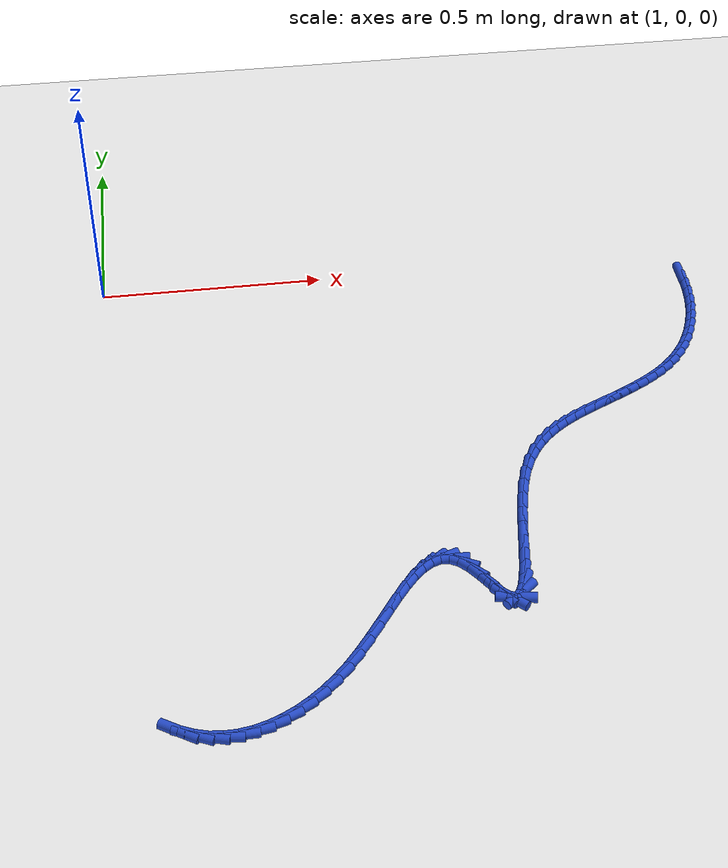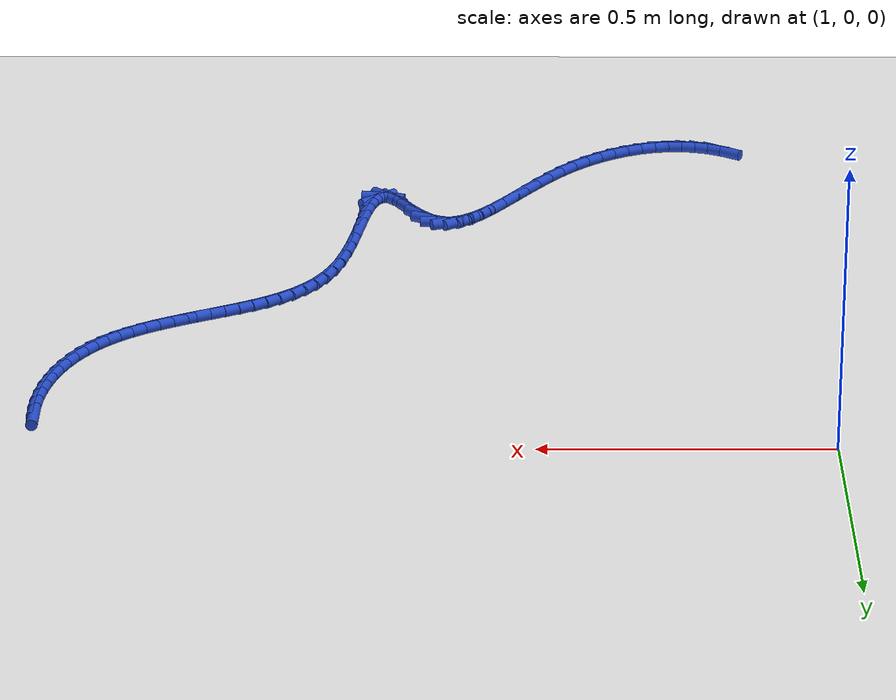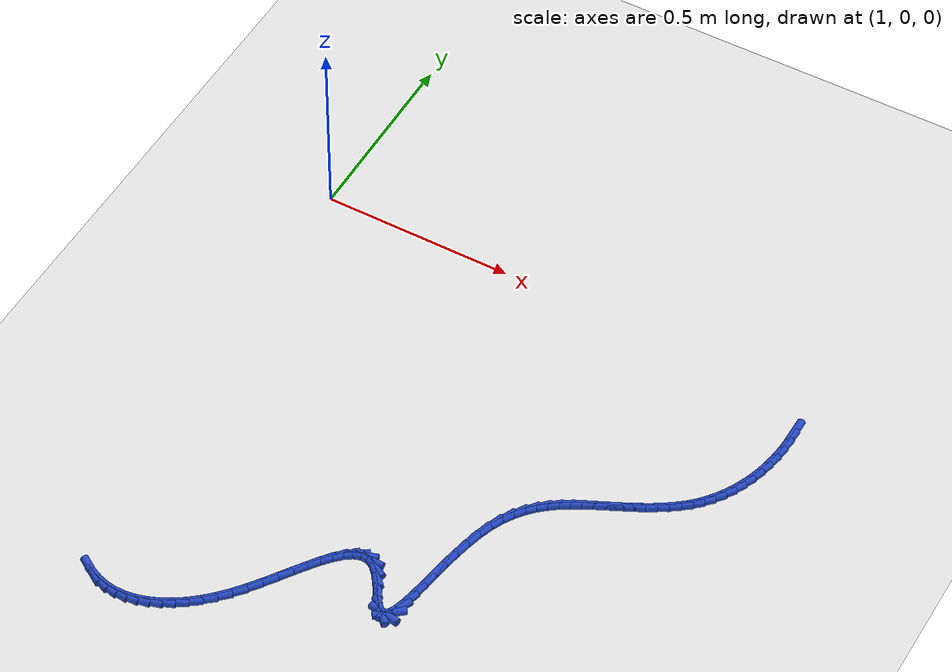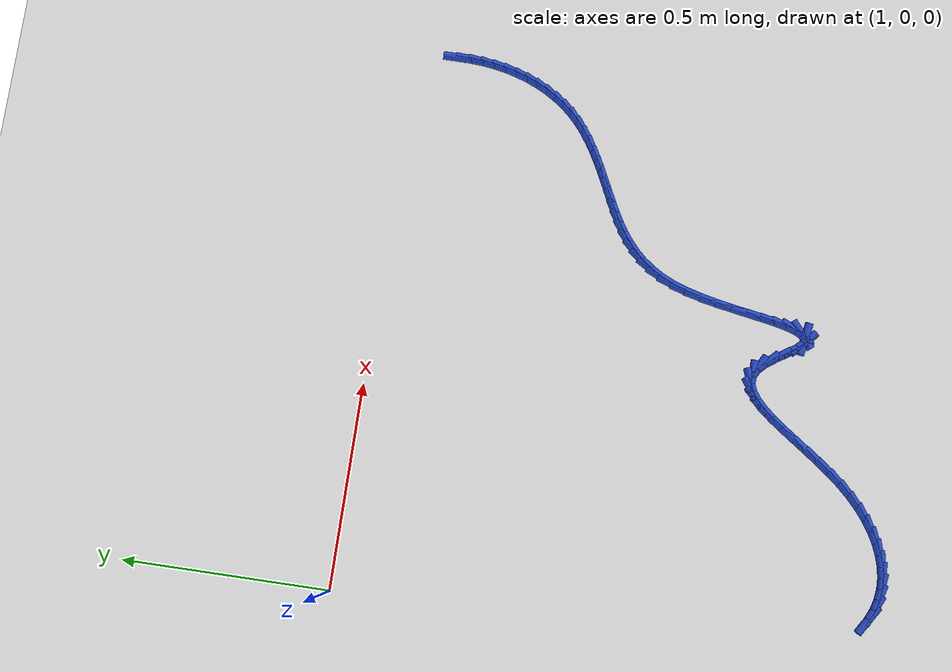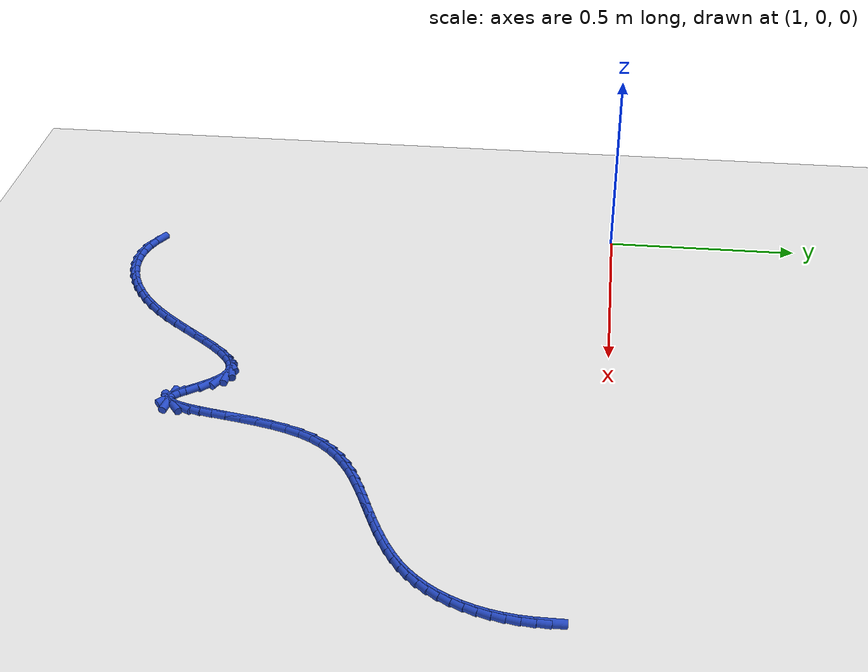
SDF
<sdf version="1.6">
 <world name="default">
  <model name="ground_plane">
   <static>1</static>
   <link name="link">
    <collision name="collision">
     <geometry><plane><normal>0 0 1</normal><size>100 100</size></plane></geometry>
     <surface><friction><ode><mu>100</mu><mu2>50</mu2></ode></friction></surface>
    </collision>
    <visual name="visual">
     <cast_shadows>0</cast_shadows>
     <geometry><plane><normal>0 0 1</normal><size>100 100</size></plane></geometry>
     <material>
      <script><uri>file://media/materials/scripts/gazebo.material</uri><name>Gazebo/WhiteGlow</name></script>
     </material>
    </visual>
   </link>
  </model>
  <model name="line">
   <link name="link_137">
    <pose>2.336138999449808 -0.10740172848831073 0.01 0 1.57 1.5655063457475435</pose>
    <collision name="collision">
     <geometry><cylinder><radius>0.01</radius><length>0.08</length></cylinder></geometry>
    </collision>
    <visual name="visual">
     <material>
      <script><name>Gazebo/Blue</name><uri>file://media/materials/scripts/gazebo.material</uri></script>
     </material>
     <geometry><cylinder><radius>0.01</radius><length>0.08</length></cylinder></geometry>
    </visual>
   </link>
   <link name="link_138">
    <pose>2.335976342731005 -0.13814951379938023 0.01 0 1.57 1.5049967967284172</pose>
    <collision name="collision">
     <geometry><cylinder><radius>0.01</radius><length>0.08</length></cylinder></geometry>
    </collision>
    <visual name="visual">
     <material>
      <script><name>Gazebo/Blue</name><uri>file://media/materials/scripts/gazebo.material</uri></script>
     </material>
     <geometry><cylinder><radius>0.01</radius><length>0.08</length></cylinder></geometry>
    </visual>
   </link>
   <link name="link_139">
    <pose>2.333972408836854 -0.16856068838100496 0.01 0 1.57 1.4434311224705292</pose>
    <collision name="collision">
     <geometry><cylinder><radius>0.01</radius><length>0.08</length></cylinder></geometry>
    </collision>
    <visual name="visual">
     <material>
      <script><name>Gazebo/Blue</name><uri>file://media/materials/scripts/gazebo.material</uri></script>
     </material>
     <geometry><cylinder><radius>0.01</radius><length>0.08</length></cylinder></geometry>
    </visual>
   </link>
   <link name="link_140">
    <pose>2.3301402363179777 -0.19848588179870852 0.01 0 1.57 1.3803237498311702</pose>
    <collision name="collision">
     <geometry><cylinder><radius>0.01</radius><length>0.08</length></cylinder></geometry>
    </collision>
    <visual name="visual">
     <material>
      <script><name>Gazebo/Blue</name><uri>file://media/materials/scripts/gazebo.material</uri></script>
     </material>
     <geometry><cylinder><radius>0.01</radius><length>0.08</length></cylinder></geometry>
    </visual>
   </link>
   <link name="link_141">
    <pose>2.3244928637249997 -0.2277757236180133 0.01 0 1.57 1.3151733259377332</pose>
    <collision name="collision">
     <geometry><cylinder><radius>0.01</radius><length>0.08</length></cylinder></geometry>
    </collision>
    <visual name="visual">
     <material>
      <script><name>Gazebo/Blue</name><uri>file://media/materials/scripts/gazebo.material</uri></script>
     </material>
     <geometry><cylinder><radius>0.01</radius><length>0.08</length></cylinder></geometry>
    </visual>
   </link>
   <link name="link_142">
    <pose>2.3170433296085435 -0.25628084340444285 0.01 0 1.57 1.2474694691080197</pose>
    <collision name="collision">
     <geometry><cylinder><radius>0.01</radius><length>0.08</length></cylinder></geometry>
    </collision>
    <visual name="visual">
     <material>
      <script><name>Gazebo/Blue</name><uri>file://media/materials/scripts/gazebo.material</uri></script>
     </material>
     <geometry><cylinder><radius>0.01</radius><length>0.08</length></cylinder></geometry>
    </visual>
   </link>
   <link name="link_143">
    <pose>2.307804672519234 -0.28385187072352047 0.01 0 1.57 1.176704876649671</pose>
    <collision name="collision">
     <geometry><cylinder><radius>0.01</radius><length>0.08</length></cylinder></geometry>
    </collision>
    <visual name="visual">
     <material>
      <script><name>Gazebo/Blue</name><uri>file://media/materials/scripts/gazebo.material</uri></script>
     </material>
     <geometry><cylinder><radius>0.01</radius><length>0.08</length></cylinder></geometry>
    </visual>
   </link>
   <link name="link_144">
    <pose>2.2967899310076945 -0.3103394351407694 0.01 0 1.57 1.1023951312265656</pose>
    <collision name="collision">
     <geometry><cylinder><radius>0.01</radius><length>0.08</length></cylinder></geometry>
    </collision>
    <visual name="visual">
     <material>
      <script><name>Gazebo/Blue</name><uri>file://media/materials/scripts/gazebo.material</uri></script>
     </material>
     <geometry><cylinder><radius>0.01</radius><length>0.08</length></cylinder></geometry>
    </visual>
   </link>
   <link name="link_145">
    <pose>2.284012143624548 -0.3355941662217128 0.01 0 1.57 1.0241086267301103</pose>
    <collision name="collision">
     <geometry><cylinder><radius>0.01</radius><length>0.08</length></cylinder></geometry>
    </collision>
    <visual name="visual">
     <material>
      <script><name>Gazebo/Blue</name><uri>file://media/materials/scripts/gazebo.material</uri></script>
     </material>
     <geometry><cylinder><radius>0.01</radius><length>0.08</length></cylinder></geometry>
    </visual>
   </link>
   <link name="link_146">
    <pose>2.269484348920419 -0.35946669353187455 0.01 0 1.57 0.9415084500491249</pose>
    <collision name="collision">
     <geometry><cylinder><radius>0.01</radius><length>0.08</length></cylinder></geometry>
    </collision>
    <visual name="visual">
     <material>
      <script><name>Gazebo/Blue</name><uri>file://media/materials/scripts/gazebo.material</uri></script>
     </material>
     <geometry><cylinder><radius>0.01</radius><length>0.08</length></cylinder></geometry>
    </visual>
   </link>
   <link name="link_147">
    <pose>2.25321958544593 -0.38180764663677635 0.01 0 1.57 0.8544062517576296</pose>
    <collision name="collision">
     <geometry><cylinder><radius>0.01</radius><length>0.08</length></cylinder></geometry>
    </collision>
    <visual name="visual">
     <material>
      <script><name>Gazebo/Blue</name><uri>file://media/materials/scripts/gazebo.material</uri></script>
     </material>
     <geometry><cylinder><radius>0.01</radius><length>0.08</length></cylinder></geometry>
    </visual>
   </link>
   <link name="link_148">
    <pose>2.2352308917517067 -0.40246765510194243 0.01 0 1.57 0.7645296895396347</pose>
    <collision name="collision">
     <geometry><cylinder><radius>0.01</radius><length>0.08</length></cylinder></geometry>
    </collision>
    <visual name="visual">
     <material>
      <script><name>Gazebo/Blue</name><uri>file://media/materials/scripts/gazebo.material</uri></script>
     </material>
     <geometry><cylinder><radius>0.01</radius><length>0.08</length></cylinder></geometry>
    </visual>
   </link>
   <link name="link_149">
    <pose>2.2155570030521017 -0.42133708674663267 0.01 0 1.57 0.6828869988178057</pose>
    <collision name="collision">
     <geometry><cylinder><radius>0.01</radius><length>0.08</length></cylinder></geometry>
    </collision>
    <visual name="visual">
     <material>
      <script><name>Gazebo/Blue</name><uri>file://media/materials/scripts/gazebo.material</uri></script>
     </material>
     <geometry><cylinder><radius>0.01</radius><length>0.08</length></cylinder></geometry>
    </visual>
   </link>
   <link name="link_150">
    <pose>2.194395035580242 -0.4385512355477323 0.01 0 1.57 0.614091030564795</pose>
    <collision name="collision">
     <geometry><cylinder><radius>0.01</radius><length>0.08</length></cylinder></geometry>
    </collision>
    <visual name="visual">
     <material>
      <script><name>Gazebo/Blue</name><uri>file://media/materials/scripts/gazebo.material</uri></script>
     </material>
     <geometry><cylinder><radius>0.01</radius><length>0.08</length></cylinder></geometry>
    </visual>
   </link>
   <link name="link_151">
    <pose>2.172002393124161 -0.4543386263458356 0.01 0 1.57 0.5581596348481375</pose>
    <collision name="collision">
     <geometry><cylinder><radius>0.01</radius><length>0.08</length></cylinder></geometry>
    </collision>
    <visual name="visual">
     <material>
      <script><name>Gazebo/Blue</name><uri>file://media/materials/scripts/gazebo.material</uri></script>
     </material>
     <geometry><cylinder><radius>0.01</radius><length>0.08</length></cylinder></geometry>
    </visual>
   </link>
   <link name="link_152">
    <pose>2.1486365972539567 -0.46892796612400034 0.01 0 1.57 0.514726771711885</pose>
    <collision name="collision">
     <geometry><cylinder><radius>0.01</radius><length>0.08</length></cylinder></geometry>
    </collision>
    <visual name="visual">
     <material>
      <script><name>Gazebo/Blue</name><uri>file://media/materials/scripts/gazebo.material</uri></script>
     </material>
     <geometry><cylinder><radius>0.01</radius><length>0.08</length></cylinder></geometry>
    </visual>
   </link>
   <link name="link_153">
    <pose>2.1245551695397284 -0.48254796186528454 0.01 0 1.57 0.48332244544354075</pose>
    <collision name="collision">
     <geometry><cylinder><radius>0.01</radius><length>0.08</length></cylinder></geometry>
    </collision>
    <visual name="visual">
     <material>
      <script><name>Gazebo/Blue</name><uri>file://media/materials/scripts/gazebo.material</uri></script>
     </material>
     <geometry><cylinder><radius>0.01</radius><length>0.08</length></cylinder></geometry>
    </visual>
   </link>
   <link name="link_154">
    <pose>2.100015631551574 -0.49542732055274574 0.01 0 1.57 0.46356240841761637</pose>
    <collision name="collision">
     <geometry><cylinder><radius>0.01</radius><length>0.08</length></cylinder></geometry>
    </collision>
    <visual name="visual">
     <material>
      <script><name>Gazebo/Blue</name><uri>file://media/materials/scripts/gazebo.material</uri></script>
     </material>
     <geometry><cylinder><radius>0.01</radius><length>0.08</length></cylinder></geometry>
    </visual>
   </link>
   <link name="link_155">
    <pose>2.075275504859593 -0.5077947491694423 0.01 0 1.57 0.4552706235301001</pose>
    <collision name="collision">
     <geometry><cylinder><radius>0.01</radius><length>0.08</length></cylinder></geometry>
    </collision>
    <visual name="visual">
     <material>
      <script><name>Gazebo/Blue</name><uri>file://media/materials/scripts/gazebo.material</uri></script>
     </material>
     <geometry><cylinder><radius>0.01</radius><length>0.08</length></cylinder></geometry>
    </visual>
   </link>
   <link name="link_156">
    <pose>2.0505923110338844 -0.5198789546984313 0.01 0 1.57 0.45891802757065037</pose>
    <collision name="collision">
     <geometry><cylinder><radius>0.01</radius><length>0.08</length></cylinder></geometry>
    </collision>
    <visual name="visual">
     <material>
      <script><name>Gazebo/Blue</name><uri>file://media/materials/scripts/gazebo.material</uri></script>
     </material>
     <geometry><cylinder><radius>0.01</radius><length>0.08</length></cylinder></geometry>
    </visual>
   </link>
   <link name="link_157">
    <pose>2.0262166901578924 -0.5319229959436851 0.01 0 1.57 0.47777502000742256</pose>
    <collision name="collision">
     <geometry><cylinder><radius>0.01</radius><length>0.08</length></cylinder></geometry>
    </collision>
    <visual name="visual">
     <material>
      <script><name>Gazebo/Blue</name><uri>file://media/materials/scripts/gazebo.material</uri></script>
     </material>
     <geometry><cylinder><radius>0.01</radius><length>0.08</length></cylinder></geometry>
    </visual>
   </link>
   <link name="link_158">
    <pose>2.0023448191010975 -0.5442835185447881 0.01 0 1.57 0.513661479106046</pose>
    <collision name="collision">
     <geometry><cylinder><radius>0.01</radius><length>0.08</length></cylinder></geometry>
    </collision>
    <visual name="visual">
     <material>
      <script><name>Gazebo/Blue</name><uri>file://media/materials/scripts/gazebo.material</uri></script>
     </material>
     <geometry><cylinder><radius>0.01</radius><length>0.08</length></cylinder></geometry>
    </visual>
   </link>
   <link name="link_159">
    <pose>1.979146978626694 -0.5573711762791761 0.01 0 1.57 0.5667515677362546</pose>
    <collision name="collision">
     <geometry><cylinder><radius>0.01</radius><length>0.08</length></cylinder></geometry>
    </collision>
    <visual name="visual">
     <material>
      <script><name>Gazebo/Blue</name><uri>file://media/materials/scripts/gazebo.material</uri></script>
     </material>
     <geometry><cylinder><radius>0.01</radius><length>0.08</length></cylinder></geometry>
    </visual>
   </link>
   <link name="link_160">
    <pose>1.9567932919096929 -0.5715969515854428 0.01 0 1.57 0.636576947499792</pose>
    <collision name="collision">
     <geometry><cylinder><radius>0.01</radius><length>0.08</length></cylinder></geometry>
    </collision>
    <visual name="visual">
     <material>
      <script><name>Gazebo/Blue</name><uri>file://media/materials/scripts/gazebo.material</uri></script>
     </material>
     <geometry><cylinder><radius>0.01</radius><length>0.08</length></cylinder></geometry>
    </visual>
   </link>
   <link name="link_161">
    <pose>1.9354538821251053 -0.5873718269021813 0.01 0 1.57 0.7216142838012278</pose>
    <collision name="collision">
     <geometry><cylinder><radius>0.01</radius><length>0.08</length></cylinder></geometry>
    </collision>
    <visual name="visual">
     <material>
      <script><name>Gazebo/Blue</name><uri>file://media/materials/scripts/gazebo.material</uri></script>
     </material>
     <geometry><cylinder><radius>0.01</radius><length>0.08</length></cylinder></geometry>
    </visual>
   </link>
   <link name="link_162">
    <pose>1.9152988724479434 -0.6051067846679854 0.01 0 1.57 0.8189413060709504</pose>
    <collision name="collision">
     <geometry><cylinder><radius>0.01</radius><length>0.08</length></cylinder></geometry>
    </collision>
    <visual name="visual">
     <material>
      <script><name>Gazebo/Blue</name><uri>file://media/materials/scripts/gazebo.material</uri></script>
     </material>
     <geometry><cylinder><radius>0.01</radius><length>0.08</length></cylinder></geometry>
    </visual>
   </link>
   <link name="link_163">
    <pose>1.8964983860532183 -0.6252128073214486 0.01 0 1.57 0.9242323846208413</pose>
    <collision name="collision">
     <geometry><cylinder><radius>0.01</radius><length>0.08</length></cylinder></geometry>
    </collision>
    <visual name="visual">
     <material>
      <script><name>Gazebo/Blue</name><uri>file://media/materials/scripts/gazebo.material</uri></script>
     </material>
     <geometry><cylinder><radius>0.01</radius><length>0.08</length></cylinder></geometry>
    </visual>
   </link>
   <link name="link_164">
    <pose>1.8792225461159413 -0.6481008773011652 0.01 0 1.57 1.0322845305111457</pose>
    <collision name="collision">
     <geometry><cylinder><radius>0.01</radius><length>0.08</length></cylinder></geometry>
    </collision>
    <visual name="visual">
     <material>
      <script><name>Gazebo/Blue</name><uri>file://media/materials/scripts/gazebo.material</uri></script>
     </material>
     <geometry><cylinder><radius>0.01</radius><length>0.08</length></cylinder></geometry>
    </visual>
   </link>
   <link name="link_165">
    <pose>1.8636414758111253 -0.6741819770457271 0.01 0 1.57 1.137962164499966</pose>
    <collision name="collision">
     <geometry><cylinder><radius>0.01</radius><length>0.08</length></cylinder></geometry>
    </collision>
    <visual name="visual">
     <material>
      <script><name>Gazebo/Blue</name><uri>file://media/materials/scripts/gazebo.material</uri></script>
     </material>
     <geometry><cylinder><radius>0.01</radius><length>0.08</length></cylinder></geometry>
    </visual>
   </link>
   <link name="link_166">
    <pose>1.8499252983137806 -0.7038670889937286 0.01 0 1.57 1.235362069882366</pose>
    <collision name="collision">
     <geometry><cylinder><radius>0.01</radius><length>0.08</length></cylinder></geometry>
    </collision>
    <visual name="visual">
     <material>
      <script><name>Gazebo/Blue</name><uri>file://media/materials/scripts/gazebo.material</uri></script>
     </material>
     <geometry><cylinder><radius>0.01</radius><length>0.08</length></cylinder></geometry>
    </visual>
   </link>
   <link name="link_167">
    <pose>1.8382126954703684 -0.7374652864388752 0.01 0 1.57 1.3084979521777211</pose>
    <collision name="collision">
     <geometry><cylinder><radius>0.01</radius><length>0.08</length></cylinder></geometry>
    </collision>
    <visual name="visual">
     <material>
      <script><name>Gazebo/Blue</name><uri>file://media/materials/scripts/gazebo.material</uri></script>
     </material>
     <geometry><cylinder><radius>0.01</radius><length>0.08</length></cylinder></geometry>
    </visual>
   </link>
   <link name="link_168">
    <pose>1.8283301847922793 -0.7742738406322092 0.01 0 1.57 1.3571436669604473</pose>
    <collision name="collision">
     <geometry><cylinder><radius>0.01</radius><length>0.08</length></cylinder></geometry>
    </collision>
    <visual name="visual">
     <material>
      <script><name>Gazebo/Blue</name><uri>file://media/materials/scripts/gazebo.material</uri></script>
     </material>
     <geometry><cylinder><radius>0.01</radius><length>0.08</length></cylinder></geometry>
    </visual>
   </link>
   <link name="link_169">
    <pose>1.8199256257147296 -0.8130109476835685 0.01 0 1.57 1.387960294753886</pose>
    <collision name="collision">
     <geometry><cylinder><radius>0.01</radius><length>0.08</length></cylinder></geometry>
    </collision>
    <visual name="visual">
     <material>
      <script><name>Gazebo/Blue</name><uri>file://media/materials/scripts/gazebo.material</uri></script>
     </material>
     <geometry><cylinder><radius>0.01</radius><length>0.08</length></cylinder></geometry>
    </visual>
   </link>
   <link name="link_170">
    <pose>1.8126447730354116 -0.8523879820505139 0.01 0 1.57 1.404224296541521</pose>
    <collision name="collision">
     <geometry><cylinder><radius>0.01</radius><length>0.08</length></cylinder></geometry>
    </collision>
    <visual name="visual">
     <material>
      <script><name>Gazebo/Blue</name><uri>file://media/materials/scripts/gazebo.material</uri></script>
     </material>
     <geometry><cylinder><radius>0.01</radius><length>0.08</length></cylinder></geometry>
    </visual>
   </link>
   <link name="link_171">
    <pose>1.8061333815520169 -0.8911163181906058 0.01 0 1.57 1.4065908571334036</pose>
    <collision name="collision">
     <geometry><cylinder><radius>0.01</radius><length>0.08</length></cylinder></geometry>
    </collision>
    <visual name="visual">
     <material>
      <script><name>Gazebo/Blue</name><uri>file://media/materials/scripts/gazebo.material</uri></script>
     </material>
     <geometry><cylinder><radius>0.01</radius><length>0.08</length></cylinder></geometry>
    </visual>
   </link>
   <link name="link_172">
    <pose>1.8000372060622367 -0.9279073305614047 0.01 0 1.57 1.3928911631442713</pose>
    <collision name="collision">
     <geometry><cylinder><radius>0.01</radius><length>0.08</length></cylinder></geometry>
    </collision>
    <visual name="visual">
     <material>
      <script><name>Gazebo/Blue</name><uri>file://media/materials/scripts/gazebo.material</uri></script>
     </material>
     <geometry><cylinder><radius>0.01</radius><length>0.08</length></cylinder></geometry>
    </visual>
   </link>
   <link name="link_173">
    <pose>1.7940020013637643 -0.9614723936204728 0.01 0 1.57 1.3563032669699584</pose>
    <collision name="collision">
     <geometry><cylinder><radius>0.01</radius><length>0.08</length></cylinder></geometry>
    </collision>
    <visual name="visual">
     <material>
      <script><name>Gazebo/Blue</name><uri>file://media/materials/scripts/gazebo.material</uri></script>
     </material>
     <geometry><cylinder><radius>0.01</radius><length>0.08</length></cylinder></geometry>
    </visual>
   </link>
   <link name="link_174">
    <pose>1.78767352225429 -0.9905228818253683 0.01 0 1.57 1.2792680100580405</pose>
    <collision name="collision">
     <geometry><cylinder><radius>0.01</radius><length>0.08</length></cylinder></geometry>
    </collision>
    <visual name="visual">
     <material>
      <script><name>Gazebo/Blue</name><uri>file://media/materials/scripts/gazebo.material</uri></script>
     </material>
     <geometry><cylinder><radius>0.01</radius><length>0.08</length></cylinder></geometry>
    </visual>
   </link>
   <link name="link_175">
    <pose>1.7806975235315061 -1.0137701696336525 0.01 0 1.57 1.1121112312118138</pose>
    <collision name="collision">
     <geometry><cylinder><radius>0.01</radius><length>0.08</length></cylinder></geometry>
    </collision>
    <visual name="visual">
     <material>
      <script><name>Gazebo/Blue</name><uri>file://media/materials/scripts/gazebo.material</uri></script>
     </material>
     <geometry><cylinder><radius>0.01</radius><length>0.08</length></cylinder></geometry>
    </visual>
   </link>
   <link name="link_176">
    <pose>1.7727197599931044 -1.0299256315028866 0.01 0 1.57 0.6945400688596756</pose>
    <collision name="collision">
     <geometry><cylinder><radius>0.01</radius><length>0.08</length></cylinder></geometry>
    </collision>
    <visual name="visual">
     <material>
      <script><name>Gazebo/Blue</name><uri>file://media/materials/scripts/gazebo.material</uri></script>
     </material>
     <geometry><cylinder><radius>0.01</radius><length>0.08</length></cylinder></geometry>
    </visual>
   </link>
   <link name="link_177">
    <pose>1.7633859864367767 -1.0377006418906307 0.01 0 1.57 -0.16984904356972824</pose>
    <collision name="collision">
     <geometry><cylinder><radius>0.01</radius><length>0.08</length></cylinder></geometry>
    </collision>
    <visual name="visual">
     <material>
      <script><name>Gazebo/Blue</name><uri>file://media/materials/scripts/gazebo.material</uri></script>
     </material>
     <geometry><cylinder><radius>0.01</radius><length>0.08</length></cylinder></geometry>
    </visual>
   </link>
   <link name="link_178">
    <pose>1.7523419576602148 -1.035806575254446 0.01 0 1.57 -0.7702885838135075</pose>
    <collision name="collision">
     <geometry><cylinder><radius>0.01</radius><length>0.08</length></cylinder></geometry>
    </collision>
    <visual name="visual">
     <material>
      <script><name>Gazebo/Blue</name><uri>file://media/materials/scripts/gazebo.material</uri></script>
     </material>
     <geometry><cylinder><radius>0.01</radius><length>0.08</length></cylinder></geometry>
    </visual>
   </link>
   <link name="link_179">
    <pose>1.739254508125591 -1.023108759883538 0.01 0 1.57 -0.9609034464083799</pose>
    <collision name="collision">
     <geometry><cylinder><radius>0.01</radius><length>0.08</length></cylinder></geometry>
    </collision>
    <visual name="visual">
     <material>
      <script><name>Gazebo/Blue</name><uri>file://media/materials/scripts/gazebo.material</uri></script>
     </material>
     <geometry><cylinder><radius>0.01</radius><length>0.08</length></cylinder></geometry>
    </visual>
   </link>
   <link name="link_180">
    <pose>1.7242171408843996 -1.0015886677908374 0.01 0 1.57 -0.9959253379585662</pose>
    <collision name="collision">
     <geometry><cylinder><radius>0.01</radius><length>0.08</length></cylinder></geometry>
    </collision>
    <visual name="visual">
     <material>
      <script><name>Gazebo/Blue</name><uri>file://media/materials/scripts/gazebo.material</uri></script>
     </material>
     <geometry><cylinder><radius>0.01</radius><length>0.08</length></cylinder></geometry>
    </visual>
   </link>
   <link name="link_181">
    <pose>1.7077200167116 -0.9761247324867259 0.01 0 1.57 -0.9502948347598364</pose>
    <collision name="collision">
     <geometry><cylinder><radius>0.01</radius><length>0.08</length></cylinder></geometry>
    </collision>
    <visual name="visual">
     <material>
      <script><name>Gazebo/Blue</name><uri>file://media/materials/scripts/gazebo.material</uri></script>
     </material>
     <geometry><cylinder><radius>0.01</radius><length>0.08</length></cylinder></geometry>
    </visual>
   </link>
   <link name="link_182">
    <pose>1.6902683638630032 -0.9517054317573106 0.01 0 1.57 -0.799168262823625</pose>
    <collision name="collision">
     <geometry><cylinder><radius>0.01</radius><length>0.08</length></cylinder></geometry>
    </collision>
    <visual name="visual">
     <material>
      <script><name>Gazebo/Blue</name><uri>file://media/materials/scripts/gazebo.material</uri></script>
     </material>
     <geometry><cylinder><radius>0.01</radius><length>0.08</length></cylinder></geometry>
    </visual>
   </link>
   <link name="link_183">
    <pose>1.6723658565117279 -0.9333029697684182 0.01 0 1.57 -0.47686827965446343</pose>
    <collision name="collision">
     <geometry><cylinder><radius>0.01</radius><length>0.08</length></cylinder></geometry>
    </collision>
    <visual name="visual">
     <material>
      <script><name>Gazebo/Blue</name><uri>file://media/materials/scripts/gazebo.material</uri></script>
     </material>
     <geometry><cylinder><radius>0.01</radius><length>0.08</length></cylinder></geometry>
    </visual>
   </link>
   <link name="link_184">
    <pose>1.6543345107793972 -0.923987313328164 0.01 0 1.57 -0.044938886052831424</pose>
    <collision name="collision">
     <geometry><cylinder><radius>0.01</radius><length>0.08</length></cylinder></geometry>
    </collision>
    <visual name="visual">
     <material>
      <script><name>Gazebo/Blue</name><uri>file://media/materials/scripts/gazebo.material</uri></script>
     </material>
     <geometry><cylinder><radius>0.01</radius><length>0.08</length></cylinder></geometry>
    </visual>
   </link>
   <link name="link_185">
    <pose>1.6361469194096334 -0.9231694325868821 0.01 0 1.57 0.34783483697862455</pose>
    <collision name="collision">
     <geometry><cylinder><radius>0.01</radius><length>0.08</length></cylinder></geometry>
    </collision>
    <visual name="visual">
     <material>
      <script><name>Gazebo/Blue</name><uri>file://media/materials/scripts/gazebo.material</uri></script>
     </material>
     <geometry><cylinder><radius>0.01</radius><length>0.08</length></cylinder></geometry>
    </visual>
   </link>
   <link name="link_186">
    <pose>1.617735996854848 -0.9298448053607573 0.01 0 1.57 0.6133468943378115</pose>
    <collision name="collision">
     <geometry><cylinder><radius>0.01</radius><length>0.08</length></cylinder></geometry>
    </collision>
    <visual name="visual">
     <material>
      <script><name>Gazebo/Blue</name><uri>file://media/materials/scripts/gazebo.material</uri></script>
     </material>
     <geometry><cylinder><radius>0.01</radius><length>0.08</length></cylinder></geometry>
    </visual>
   </link>
   <link name="link_187">
    <pose>1.599034657567451 -0.9430089094659735 0.01 0 1.57 0.7745113145327767</pose>
    <collision name="collision">
     <geometry><cylinder><radius>0.01</radius><length>0.08</length></cylinder></geometry>
    </collision>
    <visual name="visual">
     <material>
      <script><name>Gazebo/Blue</name><uri>file://media/materials/scripts/gazebo.material</uri></script>
     </material>
     <geometry><cylinder><radius>0.01</radius><length>0.08</length></cylinder></geometry>
    </visual>
   </link>
   <link name="link_188">
    <pose>1.579975815999854 -0.9616572227187152 0.01 0 1.57 0.8707208677572558</pose>
    <collision name="collision">
     <geometry><cylinder><radius>0.01</radius><length>0.08</length></cylinder></geometry>
    </collision>
    <visual name="visual">
     <material>
      <script><name>Gazebo/Blue</name><uri>file://media/materials/scripts/gazebo.material</uri></script>
     </material>
     <geometry><cylinder><radius>0.01</radius><length>0.08</length></cylinder></geometry>
    </visual>
   </link>
   <link name="link_189">
    <pose>1.560492386604467 -0.9847852229351666 0.01 0 1.57 0.9267486435429876</pose>
    <collision name="collision">
     <geometry><cylinder><radius>0.01</radius><length>0.08</length></cylinder></geometry>
    </collision>
    <visual name="visual">
     <material>
      <script><name>Gazebo/Blue</name><uri>file://media/materials/scripts/gazebo.material</uri></script>
     </material>
     <geometry><cylinder><radius>0.01</radius><length>0.08</length></cylinder></geometry>
    </visual>
   </link>
   <link name="link_190">
    <pose>1.540517283833701 -1.0113883879315133 0.01 0 1.57 0.9558769044194184</pose>
    <collision name="collision">
     <geometry><cylinder><radius>0.01</radius><length>0.08</length></cylinder></geometry>
    </collision>
    <visual name="visual">
     <material>
      <script><name>Gazebo/Blue</name><uri>file://media/materials/scripts/gazebo.material</uri></script>
     </material>
     <geometry><cylinder><radius>0.01</radius><length>0.08</length></cylinder></geometry>
    </visual>
   </link>
   <link name="link_191">
    <pose>1.5199834221399673 -1.0404621955239373 0.01 0 1.57 0.9648825667318037</pose>
    <collision name="collision">
     <geometry><cylinder><radius>0.01</radius><length>0.08</length></cylinder></geometry>
    </collision>
    <visual name="visual">
     <material>
      <script><name>Gazebo/Blue</name><uri>file://media/materials/scripts/gazebo.material</uri></script>
     </material>
     <geometry><cylinder><radius>0.01</radius><length>0.08</length></cylinder></geometry>
    </visual>
   </link>
   <link name="link_192">
    <pose>1.4988237159756763 -1.0710021235286242 0.01 0 1.57 0.9567966559517826</pose>
    <collision name="collision">
     <geometry><cylinder><radius>0.01</radius><length>0.08</length></cylinder></geometry>
    </collision>
    <visual name="visual">
     <material>
      <script><name>Gazebo/Blue</name><uri>file://media/materials/scripts/gazebo.material</uri></script>
     </material>
     <geometry><cylinder><radius>0.01</radius><length>0.08</length></cylinder></geometry>
    </visual>
   </link>
   <link name="link_193">
    <pose>1.4769710797932394 -1.1020036497617585 0.01 0 1.57 0.9321730635742295</pose>
    <collision name="collision">
     <geometry><cylinder><radius>0.01</radius><length>0.08</length></cylinder></geometry>
    </collision>
    <visual name="visual">
     <material>
      <script><name>Gazebo/Blue</name><uri>file://media/materials/scripts/gazebo.material</uri></script>
     </material>
     <geometry><cylinder><radius>0.01</radius><length>0.08</length></cylinder></geometry>
    </visual>
   </link>
   <link name="link_194">
    <pose>1.454358428045067 -1.1324622520395242 0.01 0 1.57 0.8895341035877843</pose>
    <collision name="collision">
     <geometry><cylinder><radius>0.01</radius><length>0.08</length></cylinder></geometry>
    </collision>
    <visual name="visual">
     <material>
      <script><name>Gazebo/Blue</name><uri>file://media/materials/scripts/gazebo.material</uri></script>
     </material>
     <geometry><cylinder><radius>0.01</radius><length>0.08</length></cylinder></geometry>
    </visual>
   </link>
   <link name="link_195">
    <pose>1.4309186751835696 -1.1613734081781057 0.01 0 1.57 0.8267398423718059</pose>
    <collision name="collision">
     <geometry><cylinder><radius>0.01</radius><length>0.08</length></cylinder></geometry>
    </collision>
    <visual name="visual">
     <material>
      <script><name>Gazebo/Blue</name><uri>file://media/materials/scripts/gazebo.material</uri></script>
     </material>
     <geometry><cylinder><radius>0.01</radius><length>0.08</length></cylinder></geometry>
    </visual>
   </link>
   <link name="link_196">
    <pose>1.4065996672203 -1.1877911545634767 0.01 0 1.57 0.7527565629294926</pose>
    <collision name="collision">
     <geometry><cylinder><radius>0.01</radius><length>0.08</length></cylinder></geometry>
    </collision>
    <visual name="visual">
     <material>
      <script><name>Gazebo/Blue</name><uri>file://media/materials/scripts/gazebo.material</uri></script>
     </material>
     <geometry><cylinder><radius>0.01</radius><length>0.08</length></cylinder></geometry>
    </visual>
   </link>
   <link name="link_197">
    <pose>1.3814882159483204 -1.2113145234080906 0.01 0 1.57 0.6731074089921426</pose>
    <collision name="collision">
     <geometry><cylinder><radius>0.01</radius><length>0.08</length></cylinder></geometry>
    </collision>
    <visual name="visual">
     <material>
      <script><name>Gazebo/Blue</name><uri>file://media/materials/scripts/gazebo.material</uri></script>
     </material>
     <geometry><cylinder><radius>0.01</radius><length>0.08</length></cylinder></geometry>
    </visual>
   </link>
   <link name="link_198">
    <pose>1.3557466914961946 -1.231838871509171 0.01 0 1.57 0.5867157976094023</pose>
    <collision name="collision">
     <geometry><cylinder><radius>0.01</radius><length>0.08</length></cylinder></geometry>
    </collision>
    <visual name="visual">
     <material>
      <script><name>Gazebo/Blue</name><uri>file://media/materials/scripts/gazebo.material</uri></script>
     </material>
     <geometry><cylinder><radius>0.01</radius><length>0.08</length></cylinder></geometry>
    </visual>
   </link>
   <link name="link_199">
    <pose>1.329538218428589 -1.2492625144105027 0.01 0 1.57 0.4923435003084475</pose>
    <collision name="collision">
     <geometry><cylinder><radius>0.01</radius><length>0.08</length></cylinder></geometry>
    </collision>
    <visual name="visual">
     <material>
      <script><name>Gazebo/Blue</name><uri>file://media/materials/scripts/gazebo.material</uri></script>
     </material>
     <geometry><cylinder><radius>0.01</radius><length>0.08</length></cylinder></geometry>
    </visual>
   </link>
   <link name="link_200">
    <pose>1.3030259213101727 -1.2634837676558697 0.01 0 1.57 0.3887583361114426</pose>
    <collision name="collision">
     <geometry><cylinder><radius>0.01</radius><length>0.08</length></cylinder></geometry>
    </collision>
    <visual name="visual">
     <material>
      <script><name>Gazebo/Blue</name><uri>file://media/materials/scripts/gazebo.material</uri></script>
     </material>
     <geometry><cylinder><radius>0.01</radius><length>0.08</length></cylinder></geometry>
    </visual>
   </link>
   <link name="link_201">
    <pose>1.2763729247056117 -1.2744009467890567 0.01 0 1.57 0.2749179712477423</pose>
    <collision name="collision">
     <geometry><cylinder><radius>0.01</radius><length>0.08</length></cylinder></geometry>
    </collision>
    <visual name="visual">
     <material>
      <script><name>Gazebo/Blue</name><uri>file://media/materials/scripts/gazebo.material</uri></script>
     </material>
     <geometry><cylinder><radius>0.01</radius><length>0.08</length></cylinder></geometry>
    </visual>
   </link>
   <link name="link_202">
    <pose>1.2497423531795742 -1.281912367353849 0.01 0 1.57 0.15026629750628528</pose>
    <collision name="collision">
     <geometry><cylinder><radius>0.01</radius><length>0.08</length></cylinder></geometry>
    </collision>
    <visual name="visual">
     <material>
      <script><name>Gazebo/Blue</name><uri>file://media/materials/scripts/gazebo.material</uri></script>
     </material>
     <geometry><cylinder><radius>0.01</radius><length>0.08</length></cylinder></geometry>
    </visual>
   </link>
   <link name="link_203">
    <pose>1.223297331296727 -1.2859163448940314 0.01 0 1.57 0.015129317605991094</pose>
    <collision name="collision">
     <geometry><cylinder><radius>0.01</radius><length>0.08</length></cylinder></geometry>
    </collision>
    <visual name="visual">
     <material>
      <script><name>Gazebo/Blue</name><uri>file://media/materials/scripts/gazebo.material</uri></script>
     </material>
     <geometry><cylinder><radius>0.01</radius><length>0.08</length></cylinder></geometry>
    </visual>
   </link>
   <link name="link_204">
    <pose>1.1972009836217383 -1.2863111949533885 0.01 0 1.57 -0.12888948651606733</pose>
    <collision name="collision">
     <geometry><cylinder><radius>0.01</radius><length>0.08</length></cylinder></geometry>
    </collision>
    <visual name="visual">
     <material>
      <script><name>Gazebo/Blue</name><uri>file://media/materials/scripts/gazebo.material</uri></script>
     </material>
     <geometry><cylinder><radius>0.01</radius><length>0.08</length></cylinder></geometry>
    </visual>
   </link>
   <link name="link_205">
    <pose>1.1716164347192746 -1.2829952330757044 0.01 0 1.57 -0.2787235532920746</pose>
    <collision name="collision">
     <geometry><cylinder><radius>0.01</radius><length>0.08</length></cylinder></geometry>
    </collision>
    <visual name="visual">
     <material>
      <script><name>Gazebo/Blue</name><uri>file://media/materials/scripts/gazebo.material</uri></script>
     </material>
     <geometry><cylinder><radius>0.01</radius><length>0.08</length></cylinder></geometry>
    </visual>
   </link>
   <link name="link_206">
    <pose>1.146706809154004 -1.2758667748047652 0.01 0 1.57 -0.42944922406622577</pose>
    <collision name="collision">
     <geometry><cylinder><radius>0.01</radius><length>0.08</length></cylinder></geometry>
    </collision>
    <visual name="visual">
     <material>
      <script><name>Gazebo/Blue</name><uri>file://media/materials/scripts/gazebo.material</uri></script>
     </material>
     <geometry><cylinder><radius>0.01</radius><length>0.08</length></cylinder></geometry>
    </visual>
   </link>
   <link name="link_207">
    <pose>1.1226292439891576 -1.2648403438189284 0.01 0 1.57 -0.5617728199407587</pose>
    <collision name="collision">
     <geometry><cylinder><radius>0.01</radius><length>0.08</length></cylinder></geometry>
    </collision>
    <visual name="visual">
     <material>
      <script><name>Gazebo/Blue</name><uri>file://media/materials/scripts/gazebo.material</uri></script>
     </material>
     <geometry><cylinder><radius>0.01</radius><length>0.08</length></cylinder></geometry>
    </visual>
   </link>
  </model>
 </world>
</sdf>
